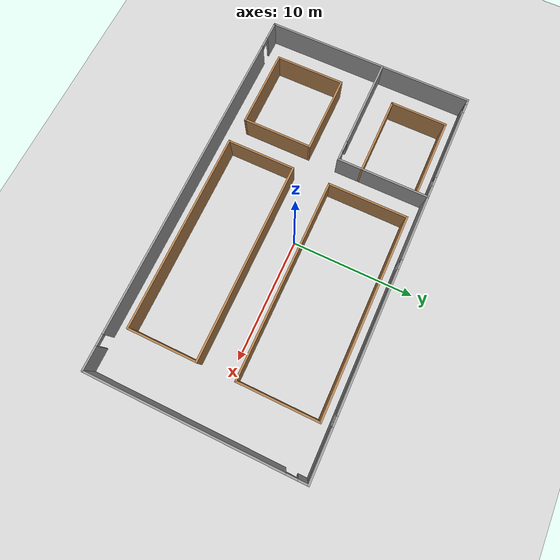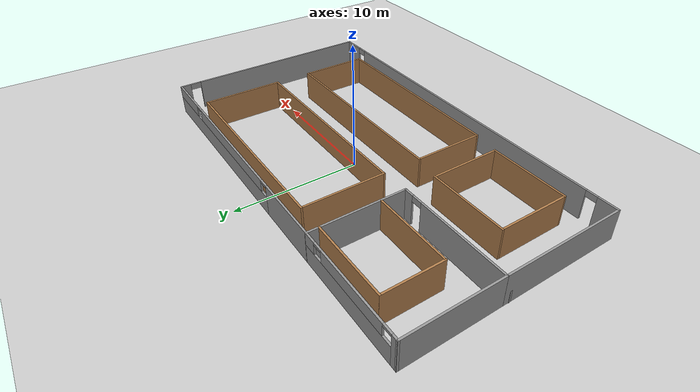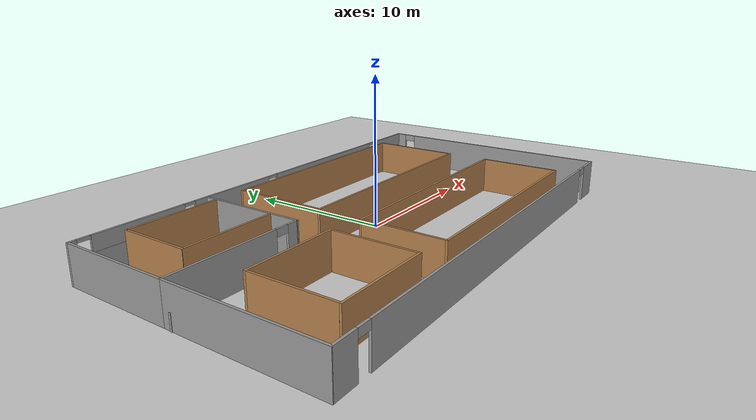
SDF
<sdf version="1.6">
 <world name="default">
  <model name="ground_plane">
   <static>1</static>
   <link name="link">
    <collision name="collision">
     <geometry><plane><normal>0 0 1</normal><size>100 100</size></plane></geometry>
     <surface><friction><ode><mu>1e+06</mu><mu2>50000</mu2></ode></friction></surface>
    </collision>
    <visual name="visual">
     <cast_shadows>0</cast_shadows>
     <geometry><plane><normal>0 0 1</normal><size>100 100</size></plane></geometry>
     <material>
      <script><uri>file://media/materials/scripts/gazebo.material</uri><name>Gazebo/Grey</name></script>
     </material>
    </visual>
   </link>
  </model>
  <model name="archives">
   <pose>-0.5201 -0.65086 0 0 -0 0</pose>
   <link name="Wall_0">
    <pose>-11.1596 8.69684 0 0 0 -3.2e-05</pose>
    <visual name="Wall_0_Visual_0">
     <pose>-4.41796 0 1.25 0 -0 0</pose>
     <geometry><box><size>0.514074 0.15 2.5</size></box></geometry>
     <material>
      <script><uri>file://media/materials/scripts/gazebo.material</uri><name>Gazebo/Grey</name></script>
      <ambient>1 1 1 1</ambient>
     </material>
    </visual>
    <collision name="Wall_0_Collision_0">
     <geometry><box><size>0.514074 0.15 2.5</size></box></geometry>
     <pose>-4.41796 0 1.25 0 -0 0</pose>
    </collision>
    <visual name="Wall_0_Visual_1">
     <pose>0.257037 0 0.75 0 -0 0</pose>
     <geometry><box><size>8.83593 0.15 1.5</size></box></geometry>
     <material>
      <script><uri>file://media/materials/scripts/gazebo.material</uri><name>Gazebo/Grey</name></script>
      <ambient>1 1 1 1</ambient>
     </material>
    </visual>
    <collision name="Wall_0_Collision_1">
     <geometry><box><size>8.83593 0.15 1.5</size></box></geometry>
     <pose>0.257037 0 0.75 0 -0 0</pose>
    </collision>
    <visual name="Wall_0_Visual_2">
     <pose>-0.271658 0 2 0 -0 0</pose>
     <geometry><box><size>6.17854 0.15 1</size></box></geometry>
     <material>
      <script><uri>file://media/materials/scripts/gazebo.material</uri><name>Gazebo/Grey</name></script>
      <ambient>1 1 1 1</ambient>
     </material>
    </visual>
    <collision name="Wall_0_Collision_2">
     <geometry><box><size>6.17854 0.15 1</size></box></geometry>
     <pose>-0.271658 0 2 0 -0 0</pose>
    </collision>
    <visual name="Wall_0_Visual_3">
     <pose>4.1463 0 2 0 -0 0</pose>
     <geometry><box><size>1.05739 0.15 1</size></box></geometry>
     <material>
      <script><uri>file://media/materials/scripts/gazebo.material</uri><name>Gazebo/Grey</name></script>
      <ambient>1 1 1 1</ambient>
     </material>
    </visual>
    <collision name="Wall_0_Collision_3">
     <geometry><box><size>1.05739 0.15 1</size></box></geometry>
     <pose>4.1463 0 2 0 -0 0</pose>
    </collision>
    <visual name="Wall_0_Visual_4">
     <pose>-3.76093 0 2.4 0 -0 0</pose>
     <geometry><box><size>0.8 0.15 0.2</size></box></geometry>
     <material>
      <script><uri>file://media/materials/scripts/gazebo.material</uri><name>Gazebo/Grey</name></script>
      <ambient>1 1 1 1</ambient>
     </material>
    </visual>
    <collision name="Wall_0_Collision_4">
     <geometry><box><size>0.8 0.15 0.2</size></box></geometry>
     <pose>-3.76093 0 2.4 0 -0 0</pose>
    </collision>
    <visual name="Wall_0_Visual_5">
     <pose>3.21761 0 2.4 0 -0 0</pose>
     <geometry><box><size>0.8 0.15 0.2</size></box></geometry>
     <material>
      <script><uri>file://media/materials/scripts/gazebo.material</uri><name>Gazebo/Grey</name></script>
      <ambient>1 1 1 1</ambient>
     </material>
    </visual>
    <collision name="Wall_0_Collision_5">
     <geometry><box><size>0.8 0.15 0.2</size></box></geometry>
     <pose>3.21761 0 2.4 0 -0 0</pose>
    </collision>
   </link>
   <link name="Wall_16">
    <collision name="Wall_16_Collision">
     <geometry><box><size>6.5 0.15 2.5</size></box></geometry>
     <pose>0 0 1.25 0 -0 0</pose>
    </collision>
    <visual name="Wall_16_Visual">
     <pose>0 0 1.25 0 -0 0</pose>
     <geometry><box><size>6.5 0.15 2.5</size></box></geometry>
     <material>
      <script><uri>file://media/materials/scripts/gazebo.material</uri><name>Gazebo/Wood</name></script>
      <ambient>1 1 1 1</ambient>
     </material>
    </visual>
    <pose>-9.75368 7.79887 0 0 -0 0</pose>
   </link>
   <link name="Wall_2">
    <collision name="Wall_2_Collision">
     <geometry><box><size>7.66 0.15 2.5</size></box></geometry>
     <pose>0 0 1.25 0 -0 0</pose>
    </collision>
    <visual name="Wall_2_Visual">
     <pose>0 0 1.25 0 -0 0</pose>
     <geometry><box><size>7.66 0.15 2.5</size></box></geometry>
     <material>
      <script><uri>file://media/materials/scripts/gazebo.material</uri><name>Gazebo/Grey</name></script>
      <ambient>1 1 1 1</ambient>
     </material>
    </visual>
    <pose>-15.7595 4.94199 0 0 0 -1.5708</pose>
   </link>
   <link name="Wall_24">
    <collision name="Wall_24_Collision">
     <geometry><box><size>4.75 0.15 2.5</size></box></geometry>
     <pose>0 0 1.25 0 -0 0</pose>
    </collision>
    <visual name="Wall_24_Visual">
     <pose>0 0 1.25 0 -0 0</pose>
     <geometry><box><size>4.75 0.15 2.5</size></box></geometry>
     <material>
      <script><uri>file://media/materials/scripts/gazebo.material</uri><name>Gazebo/Wood</name></script>
      <ambient>1 1 1 1</ambient>
     </material>
    </visual>
    <pose>-12.9287 5.49887 0 0 0 -1.5708</pose>
   </link>
   <link name="Wall_26">
    <collision name="Wall_26_Collision">
     <geometry><box><size>6.5 0.15 2.5</size></box></geometry>
     <pose>0 0 1.25 0 -0 0</pose>
    </collision>
    <visual name="Wall_26_Visual">
     <pose>0 0 1.25 0 -0 0</pose>
     <geometry><box><size>6.5 0.15 2.5</size></box></geometry>
     <material>
      <script><uri>file://media/materials/scripts/gazebo.material</uri><name>Gazebo/Wood</name></script>
      <ambient>1 1 1 1</ambient>
     </material>
    </visual>
    <pose>-9.73415 3.19263 0 0 -0 0</pose>
   </link>
   <link name="Wall_30">
    <collision name="Wall_30_Collision">
     <geometry><box><size>9.92 0.15 2.5</size></box></geometry>
     <pose>0 0 1.25 0 -0 0</pose>
    </collision>
    <visual name="Wall_30_Visual">
     <pose>0 0 1.25 0 -0 0</pose>
     <geometry><box><size>9.92 0.15 2.5</size></box></geometry>
     <material>
      <script><uri>file://media/materials/scripts/gazebo.material</uri><name>Gazebo/Grey</name></script>
      <ambient>1 1 1 1</ambient>
     </material>
    </visual>
    <pose>-15.7615 -3.81005 0 0 0 -1.5708</pose>
   </link>
   <link name="Wall_36">
    <collision name="Wall_36_Collision">
     <geometry><box><size>6.5 0.15 2.5</size></box></geometry>
     <pose>0 0 1.25 0 -0 0</pose>
    </collision>
    <visual name="Wall_36_Visual">
     <pose>0 0 1.25 0 -0 0</pose>
     <geometry><box><size>6.5 0.15 2.5</size></box></geometry>
     <material>
      <script><uri>file://media/materials/scripts/gazebo.material</uri><name>Gazebo/Wood</name></script>
      <ambient>1 1 1 1</ambient>
     </material>
    </visual>
    <pose>-9.76144 -1.31072 0 0 -0 0</pose>
   </link>
   <link name="Wall_38">
    <collision name="Wall_38_Collision">
     <geometry><box><size>5.52 0.15 2.5</size></box></geometry>
     <pose>0 0 1.25 0 -0 0</pose>
    </collision>
    <visual name="Wall_38_Visual">
     <pose>0 0 1.25 0 -0 0</pose>
     <geometry><box><size>5.52 0.15 2.5</size></box></geometry>
     <material>
      <script><uri>file://media/materials/scripts/gazebo.material</uri><name>Gazebo/Wood</name></script>
      <ambient>1 1 1 1</ambient>
     </material>
    </visual>
    <pose>-6.58642 -4.14554 0 0 0 -1.5708</pose>
   </link>
   <link name="Wall_4">
    <pose>-11.1595 1.18699 0 0 -0 0</pose>
    <visual name="Wall_4_Visual_0">
     <pose>-0.883801 0 1.25 0 -0 0</pose>
     <geometry><box><size>7.5824 0.15 2.5</size></box></geometry>
     <material>
      <script><uri>file://media/materials/scripts/gazebo.material</uri><name>Gazebo/Grey</name></script>
      <ambient>1 1 1 1</ambient>
     </material>
    </visual>
    <collision name="Wall_4_Collision_0">
     <geometry><box><size>7.5824 0.15 2.5</size></box></geometry>
     <pose>-0.883801 0 1.25 0 -0 0</pose>
    </collision>
    <visual name="Wall_4_Visual_1">
     <pose>4.2412 0 1.25 0 -0 0</pose>
     <geometry><box><size>0.867602 0.15 2.5</size></box></geometry>
     <material>
      <script><uri>file://media/materials/scripts/gazebo.material</uri><name>Gazebo/Grey</name></script>
      <ambient>1 1 1 1</ambient>
     </material>
    </visual>
    <collision name="Wall_4_Collision_1">
     <geometry><box><size>0.867602 0.15 2.5</size></box></geometry>
     <pose>4.2412 0 1.25 0 -0 0</pose>
    </collision>
    <visual name="Wall_4_Visual_2">
     <pose>3.3574 0 2.25 0 -0 0</pose>
     <geometry><box><size>0.9 0.15 0.5</size></box></geometry>
     <material>
      <script><uri>file://media/materials/scripts/gazebo.material</uri><name>Gazebo/Grey</name></script>
      <ambient>1 1 1 1</ambient>
     </material>
    </visual>
    <collision name="Wall_4_Collision_2">
     <geometry><box><size>0.9 0.15 0.5</size></box></geometry>
     <pose>3.3574 0 2.25 0 -0 0</pose>
    </collision>
   </link>
   <link name="Wall_40">
    <collision name="Wall_40_Collision">
     <geometry><box><size>5.52 0.15 2.5</size></box></geometry>
     <pose>0 0 1.25 0 -0 0</pose>
    </collision>
    <visual name="Wall_40_Visual">
     <pose>0 0 1.25 0 -0 0</pose>
     <geometry><box><size>5.52 0.15 2.5</size></box></geometry>
     <material>
      <script><uri>file://media/materials/scripts/gazebo.material</uri><name>Gazebo/Wood</name></script>
      <ambient>1 1 1 1</ambient>
     </material>
    </visual>
    <pose>-12.9361 -4.14531 0 0 0 -1.5708</pose>
   </link>
   <link name="Wall_42">
    <collision name="Wall_42_Collision">
     <geometry><box><size>6.5 0.15 2.5</size></box></geometry>
     <pose>0 0 1.25 0 -0 0</pose>
    </collision>
    <visual name="Wall_42_Visual">
     <pose>0 0 1.25 0 -0 0</pose>
     <geometry><box><size>6.5 0.15 2.5</size></box></geometry>
     <material>
      <script><uri>file://media/materials/scripts/gazebo.material</uri><name>Gazebo/Wood</name></script>
      <ambient>1 1 1 1</ambient>
     </material>
    </visual>
    <pose>-9.7587 -6.97204 0 0 -0 0</pose>
   </link>
   <link name="Wall_44">
    <pose>0.003417 -8.69699 0 0 -0 0</pose>
    <visual name="Wall_44_Visual_0">
     <pose>-15.0091 0 1.25 0 -0 0</pose>
     <geometry><box><size>1.58177 0.15 2.5</size></box></geometry>
     <material>
      <script><uri>file://media/materials/scripts/gazebo.material</uri><name>Gazebo/Grey</name></script>
      <ambient>1 1 1 1</ambient>
     </material>
    </visual>
    <collision name="Wall_44_Collision_0">
     <geometry><box><size>1.58177 0.15 2.5</size></box></geometry>
     <pose>-15.0091 0 1.25 0 -0 0</pose>
    </collision>
    <visual name="Wall_44_Visual_1">
     <pose>-0.185174 0 1.25 0 -0 0</pose>
     <geometry><box><size>26.2661 0.15 2.5</size></box></geometry>
     <material>
      <script><uri>file://media/materials/scripts/gazebo.material</uri><name>Gazebo/Grey</name></script>
      <ambient>1 1 1 1</ambient>
     </material>
    </visual>
    <collision name="Wall_44_Collision_1">
     <geometry><box><size>26.2661 0.15 2.5</size></box></geometry>
     <pose>-0.185174 0 1.25 0 -0 0</pose>
    </collision>
    <visual name="Wall_44_Visual_2">
     <pose>14.8239 0 1.25 0 -0 0</pose>
     <geometry><box><size>1.95212 0.15 2.5</size></box></geometry>
     <material>
      <script><uri>file://media/materials/scripts/gazebo.material</uri><name>Gazebo/Grey</name></script>
      <ambient>1 1 1 1</ambient>
     </material>
    </visual>
    <collision name="Wall_44_Collision_2">
     <geometry><box><size>1.95212 0.15 2.5</size></box></geometry>
     <pose>14.8239 0 1.25 0 -0 0</pose>
    </collision>
    <visual name="Wall_44_Visual_3">
     <pose>-13.7682 0 2.25 0 -0 0</pose>
     <geometry><box><size>0.9 0.15 0.5</size></box></geometry>
     <material>
      <script><uri>file://media/materials/scripts/gazebo.material</uri><name>Gazebo/Grey</name></script>
      <ambient>1 1 1 1</ambient>
     </material>
    </visual>
    <collision name="Wall_44_Collision_3">
     <geometry><box><size>0.9 0.15 0.5</size></box></geometry>
     <pose>-13.7682 0 2.25 0 -0 0</pose>
    </collision>
    <visual name="Wall_44_Visual_4">
     <pose>13.3979 0 2.25 0 -0 0</pose>
     <geometry><box><size>0.9 0.15 0.5</size></box></geometry>
     <material>
      <script><uri>file://media/materials/scripts/gazebo.material</uri><name>Gazebo/Grey</name></script>
      <ambient>1 1 1 1</ambient>
     </material>
    </visual>
    <collision name="Wall_44_Collision_4">
     <geometry><box><size>0.9 0.15 0.5</size></box></geometry>
     <pose>13.3979 0 2.25 0 -0 0</pose>
    </collision>
   </link>
   <link name="Wall_46">
    <pose>4.67243 8.69585 0 0 -0 0</pose>
    <visual name="Wall_46_Visual_0">
     <pose>-8.46283 0 1.25 0 -0 0</pose>
     <geometry><box><size>5.39434 0.15 2.5</size></box></geometry>
     <material>
      <script><uri>file://media/materials/scripts/gazebo.material</uri><name>Gazebo/Grey</name></script>
      <ambient>1 1 1 1</ambient>
     </material>
    </visual>
    <collision name="Wall_46_Collision_0">
     <geometry><box><size>5.39434 0.15 2.5</size></box></geometry>
     <pose>-8.46283 0 1.25 0 -0 0</pose>
    </collision>
    <visual name="Wall_46_Visual_1">
     <pose>2.69717 0 0.75 0 -0 0</pose>
     <geometry><box><size>16.9257 0.15 1.5</size></box></geometry>
     <material>
      <script><uri>file://media/materials/scripts/gazebo.material</uri><name>Gazebo/Grey</name></script>
      <ambient>1 1 1 1</ambient>
     </material>
    </visual>
    <collision name="Wall_46_Collision_1">
     <geometry><box><size>16.9257 0.15 1.5</size></box></geometry>
     <pose>2.69717 0 0.75 0 -0 0</pose>
    </collision>
    <visual name="Wall_46_Visual_2">
     <pose>0.66837 0 2 0 -0 0</pose>
     <geometry><box><size>11.2681 0.15 1</size></box></geometry>
     <material>
      <script><uri>file://media/materials/scripts/gazebo.material</uri><name>Gazebo/Grey</name></script>
      <ambient>1 1 1 1</ambient>
     </material>
    </visual>
    <collision name="Wall_46_Collision_2">
     <geometry><box><size>11.2681 0.15 1</size></box></geometry>
     <pose>0.66837 0 2 0 -0 0</pose>
    </collision>
    <visual name="Wall_46_Visual_3">
     <pose>9.1312 0 2 0 -0 0</pose>
     <geometry><box><size>4.0576 0.15 1</size></box></geometry>
     <material>
      <script><uri>file://media/materials/scripts/gazebo.material</uri><name>Gazebo/Grey</name></script>
      <ambient>1 1 1 1</ambient>
     </material>
    </visual>
    <collision name="Wall_46_Collision_3">
     <geometry><box><size>4.0576 0.15 1</size></box></geometry>
     <pose>9.1312 0 2 0 -0 0</pose>
    </collision>
    <visual name="Wall_46_Visual_4">
     <pose>-5.36566 0 2.4 0 -0 0</pose>
     <geometry><box><size>0.8 0.15 0.2</size></box></geometry>
     <material>
      <script><uri>file://media/materials/scripts/gazebo.material</uri><name>Gazebo/Grey</name></script>
      <ambient>1 1 1 1</ambient>
     </material>
    </visual>
    <collision name="Wall_46_Collision_4">
     <geometry><box><size>0.8 0.15 0.2</size></box></geometry>
     <pose>-5.36566 0 2.4 0 -0 0</pose>
    </collision>
    <visual name="Wall_46_Visual_5">
     <pose>6.7024 0 2.4 0 -0 0</pose>
     <geometry><box><size>0.8 0.15 0.2</size></box></geometry>
     <material>
      <script><uri>file://media/materials/scripts/gazebo.material</uri><name>Gazebo/Grey</name></script>
      <ambient>1 1 1 1</ambient>
     </material>
    </visual>
    <collision name="Wall_46_Collision_5">
     <geometry><box><size>0.8 0.15 0.2</size></box></geometry>
     <pose>6.7024 0 2.4 0 -0 0</pose>
    </collision>
   </link>
   <link name="Wall_52">
    <collision name="Wall_52_Collision">
     <geometry><box><size>16.353 0.15 2.5</size></box></geometry>
     <pose>0 0 1.25 0 -0 0</pose>
    </collision>
    <visual name="Wall_52_Visual">
     <pose>0 0 1.25 0 -0 0</pose>
     <geometry><box><size>16.353 0.15 2.5</size></box></geometry>
     <material>
      <script><uri>file://media/materials/scripts/gazebo.material</uri><name>Gazebo/Wood</name></script>
      <ambient>1 1 1 1</ambient>
     </material>
    </visual>
    <pose>3.76505 7.83299 0 0 -0 0</pose>
   </link>
   <link name="Wall_54">
    <collision name="Wall_54_Collision">
     <geometry><box><size>6.445 0.15 2.5</size></box></geometry>
     <pose>0 0 1.25 0 -0 0</pose>
    </collision>
    <visual name="Wall_54_Visual">
     <pose>0 0 1.25 0 -0 0</pose>
     <geometry><box><size>6.445 0.15 2.5</size></box></geometry>
     <material>
      <script><uri>file://media/materials/scripts/gazebo.material</uri><name>Gazebo/Wood</name></script>
      <ambient>1 1 1 1</ambient>
     </material>
    </visual>
    <pose>-4.33681 4.53876 0 0 0 -1.5708</pose>
   </link>
   <link name="Wall_56">
    <collision name="Wall_56_Collision">
     <geometry><box><size>16.35 0.15 2.5</size></box></geometry>
     <pose>0 0 1.25 0 -0 0</pose>
    </collision>
    <visual name="Wall_56_Visual">
     <pose>0 0 1.25 0 -0 0</pose>
     <geometry><box><size>16.35 0.15 2.5</size></box></geometry>
     <material>
      <script><uri>file://media/materials/scripts/gazebo.material</uri><name>Gazebo/Wood</name></script>
      <ambient>1 1 1 1</ambient>
     </material>
    </visual>
    <pose>3.76265 1.35644 0 0 -0 0</pose>
   </link>
   <link name="Wall_58">
    <collision name="Wall_58_Collision">
     <geometry><box><size>6.46 0.15 2.5</size></box></geometry>
     <pose>0 0 1.25 0 -0 0</pose>
    </collision>
    <visual name="Wall_58_Visual">
     <pose>0 0 1.25 0 -0 0</pose>
     <geometry><box><size>6.46 0.15 2.5</size></box></geometry>
     <material>
      <script><uri>file://media/materials/scripts/gazebo.material</uri><name>Gazebo/Wood</name></script>
      <ambient>1 1 1 1</ambient>
     </material>
    </visual>
    <pose>11.8641 4.56887 0 0 0 -1.5708</pose>
   </link>
   <link name="Wall_6">
    <collision name="Wall_6_Collision">
     <geometry><box><size>7.6597 0.15 2.5</size></box></geometry>
     <pose>0 0 1.25 0 -0 0</pose>
    </collision>
    <visual name="Wall_6_Visual">
     <pose>0 0 1.25 0 -0 0</pose>
     <geometry><box><size>7.6597 0.15 2.5</size></box></geometry>
     <material>
      <script><uri>file://media/materials/scripts/gazebo.material</uri><name>Gazebo/Grey</name></script>
      <ambient>1 1 1 1</ambient>
     </material>
    </visual>
    <pose>-6.55959 4.94184 0 0 0 -1.57076</pose>
   </link>
   <link name="Wall_62">
    <collision name="Wall_62_Collision">
     <geometry><box><size>16.36 0.15 2.5</size></box></geometry>
     <pose>0 0 1.25 0 -0 0</pose>
    </collision>
    <visual name="Wall_62_Visual">
     <pose>0 0 1.25 0 -0 0</pose>
     <geometry><box><size>16.36 0.15 2.5</size></box></geometry>
     <material>
      <script><uri>file://media/materials/scripts/gazebo.material</uri><name>Gazebo/Wood</name></script>
      <ambient>1 1 1 1</ambient>
     </material>
    </visual>
    <pose>3.75015 -1.72598 0 0 -0 0</pose>
   </link>
   <link name="Wall_66">
    <collision name="Wall_66_Collision">
     <geometry><box><size>5.52 0.15 2.5</size></box></geometry>
     <pose>0 0 1.25 0 -0 0</pose>
    </collision>
    <visual name="Wall_66_Visual">
     <pose>0 0 1.25 0 -0 0</pose>
     <geometry><box><size>5.52 0.15 2.5</size></box></geometry>
     <material>
      <script><uri>file://media/materials/scripts/gazebo.material</uri><name>Gazebo/Wood</name></script>
      <ambient>1 1 1 1</ambient>
     </material>
    </visual>
    <pose>-4.35513 -4.55536 0 0 0 -1.5708</pose>
   </link>
   <link name="Wall_68">
    <collision name="Wall_68_Collision">
     <geometry><box><size>16.35 0.15 2.5</size></box></geometry>
     <pose>0 0 1.25 0 -0 0</pose>
    </collision>
    <visual name="Wall_68_Visual">
     <pose>0 0 1.25 0 -0 0</pose>
     <geometry><box><size>16.35 0.15 2.5</size></box></geometry>
     <material>
      <script><uri>file://media/materials/scripts/gazebo.material</uri><name>Gazebo/Wood</name></script>
      <ambient>1 1 1 1</ambient>
     </material>
    </visual>
    <pose>3.7433 -7.29576 0 0 -0 0</pose>
   </link>
   <link name="Wall_70">
    <collision name="Wall_70_Collision">
     <geometry><box><size>5.52 0.15 2.5</size></box></geometry>
     <pose>0 0 1.25 0 -0 0</pose>
    </collision>
    <visual name="Wall_70_Visual">
     <pose>0 0 1.25 0 -0 0</pose>
     <geometry><box><size>5.52 0.15 2.5</size></box></geometry>
     <material>
      <script><uri>file://media/materials/scripts/gazebo.material</uri><name>Gazebo/Wood</name></script>
      <ambient>1 1 1 1</ambient>
     </material>
    </visual>
    <pose>11.8509 -4.55365 0 0 0 -1.5708</pose>
   </link>
   <link name="Wall_72">
    <pose>15.7615 0.019987 0 0 0 -1.5708</pose>
    <visual name="Wall_72_Visual_0">
     <pose>-8.31261 0 1.25 0 -0 0</pose>
     <geometry><box><size>0.864783 0.15 2.5</size></box></geometry>
     <material>
      <script><uri>file://media/materials/scripts/gazebo.material</uri><name>Gazebo/Grey</name></script>
      <ambient>1 1 1 1</ambient>
     </material>
    </visual>
    <collision name="Wall_72_Collision_0">
     <geometry><box><size>0.864783 0.15 2.5</size></box></geometry>
     <pose>-8.31261 0 1.25 0 -0 0</pose>
    </collision>
    <visual name="Wall_72_Visual_1">
     <pose>0.882392 0 1.25 0 -0 0</pose>
     <geometry><box><size>15.7252 0.15 2.5</size></box></geometry>
     <material>
      <script><uri>file://media/materials/scripts/gazebo.material</uri><name>Gazebo/Grey</name></script>
      <ambient>1 1 1 1</ambient>
     </material>
    </visual>
    <collision name="Wall_72_Collision_1">
     <geometry><box><size>15.7252 0.15 2.5</size></box></geometry>
     <pose>0.882392 0 1.25 0 -0 0</pose>
    </collision>
    <visual name="Wall_72_Visual_2">
     <pose>-7.43022 0 2.25 0 -0 0</pose>
     <geometry><box><size>0.9 0.15 0.5</size></box></geometry>
     <material>
      <script><uri>file://media/materials/scripts/gazebo.material</uri><name>Gazebo/Grey</name></script>
      <ambient>1 1 1 1</ambient>
     </material>
    </visual>
    <collision name="Wall_72_Collision_2">
     <geometry><box><size>0.9 0.15 0.5</size></box></geometry>
     <pose>-7.43022 0 2.25 0 -0 0</pose>
    </collision>
   </link>
   <static>1</static>
  </model>
  <model name="reflactor_borad_clone_clone">
   <link name="link">
    <inertial>
     <mass>1</mass>
     <inertia>
      <ixx>0.166667</ixx>
      <ixy>0</ixy>
      <ixz>0</ixz>
      <iyy>0.166667</iyy>
      <iyz>0</iyz>
      <izz>0.166667</izz>
     </inertia>
    </inertial>
    <visual name="visual">
     <laser_retro>200</laser_retro>
     <geometry><box><size>0.139542 0.023509 1</size></box></geometry>
     <material>
      <script><name>Gazebo/Grey</name><uri>file://media/materials/scripts/gazebo.material</uri></script>
      <shader type="pixel"/>
     </material>
    </visual>
    <collision name="collision">
     <laser_retro>200</laser_retro>
     <geometry><box><size>0.139542 0.023509 1</size></box></geometry>
     <surface>
      <friction>
       <ode><mu>1</mu><mu2>1</mu2><fdir1>0 0 0</fdir1><slip1>0</slip1><slip2>0</slip2></ode>
       <torsional>
        <coefficient>1</coefficient>
        <patch_radius>0</patch_radius>
        <surface_radius>0</surface_radius>
        <use_patch_radius>1</use_patch_radius>
        <ode><slip>0</slip></ode>
       </torsional>
      </friction>
      <bounce><restitution_coefficient>0</restitution_coefficient><threshold>1e+06</threshold></bounce>
      <contact>
       <collide_without_contact>0</collide_without_contact>
       <collide_without_contact_bitmask>1</collide_without_contact_bitmask>
       <collide_bitmask>1</collide_bitmask>
       <ode>
        <soft_cfm>0</soft_cfm>
        <soft_erp>0.2</soft_erp>
        <kp>1e+13</kp>
        <kd>1</kd>
        <max_vel>0.01</max_vel>
        <min_depth>0</min_depth>
       </ode>
       <bullet>
        <split_impulse>1</split_impulse>
        <split_impulse_penetration_threshold>-0.01</split_impulse_penetration_threshold>
        <soft_cfm>0</soft_cfm>
        <soft_erp>0.2</soft_erp>
        <kp>1e+13</kp>
        <kd>1</kd>
       </bullet>
      </contact>
     </surface>
    </collision>
   </link>
   <static>0</static>
   <pose>-16.3684 -0.009154 0.5 -0 -4e-06 1.57055</pose>
  </model>
 </world>
</sdf>
